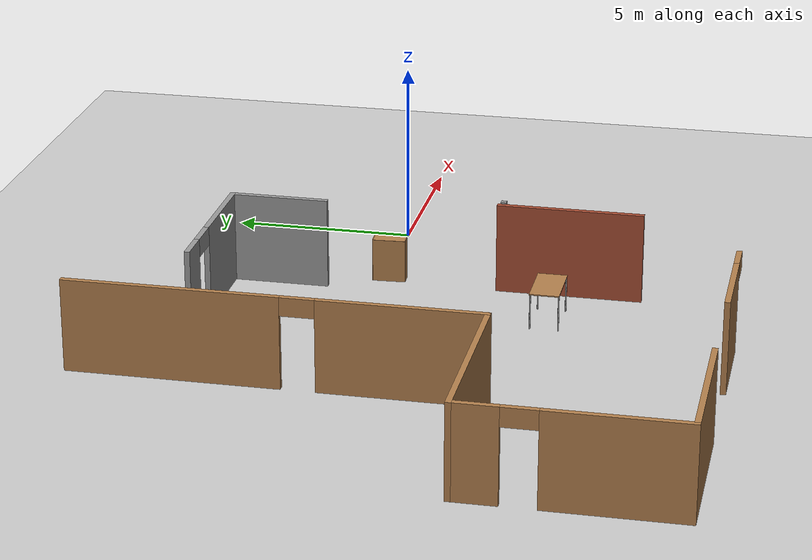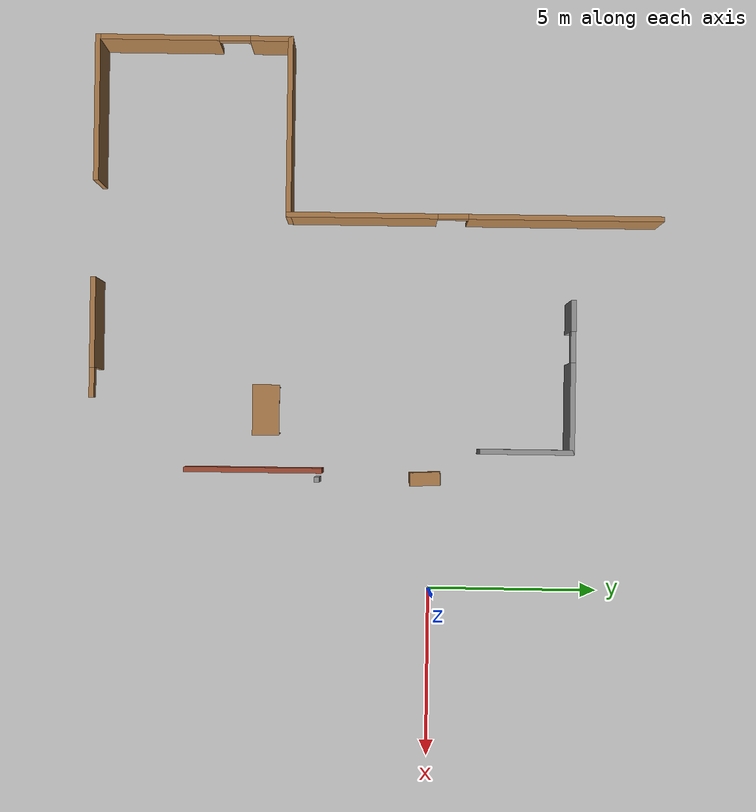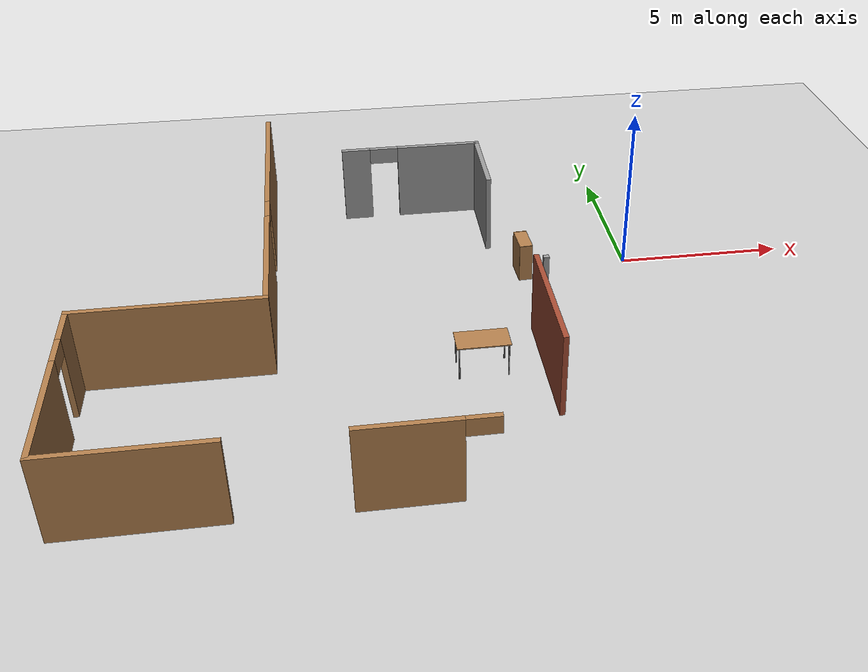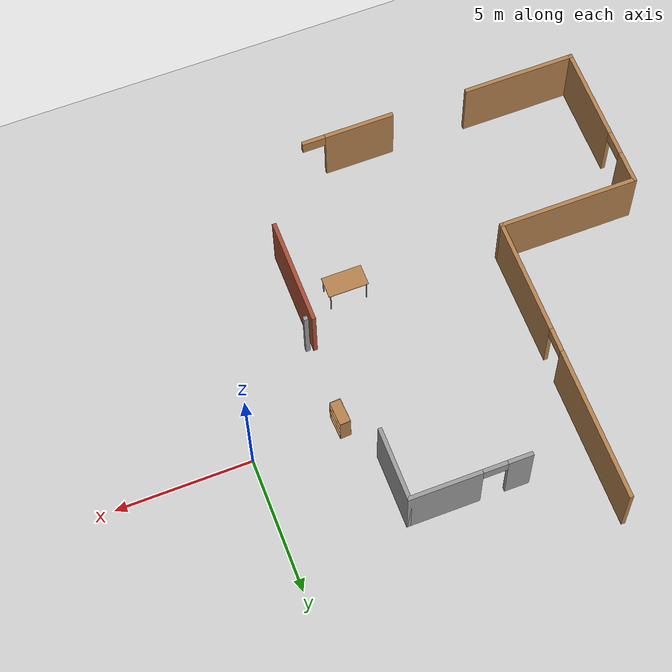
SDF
<sdf version="1.7">
 <world name="default">
  <model name="ground_plane">
   <static>1</static>
   <link name="link">
    <collision name="collision">
     <geometry><plane><normal>0 0 1</normal><size>100 100</size></plane></geometry>
     <surface>
      <contact><collide_bitmask>65535</collide_bitmask></contact>
      <friction><ode><mu>100</mu><mu2>50</mu2></ode></friction>
     </surface>
    </collision>
    <visual name="visual">
     <cast_shadows>0</cast_shadows>
     <geometry><plane><normal>0 0 1</normal><size>100 100</size></plane></geometry>
     <material>
      <script><uri>file://media/materials/scripts/gazebo.material</uri><name>Gazebo/Grey</name></script>
     </material>
    </visual>
   </link>
  </model>
  <model name="table_clone_0">
   <model name="table">
    <static>1</static>
    <link name="link">
     <collision name="surface">
      <pose>0 0 1 0 -0 0</pose>
      <geometry><box><size>1.5 0.8 0.03</size></box></geometry>
      <surface><friction><ode><mu>0.6</mu><mu2>0.6</mu2></ode></friction></surface>
     </collision>
     <visual name="visual1">
      <pose>0 0 1 0 -0 0</pose>
      <geometry><box><size>1.5 0.8 0.03</size></box></geometry>
      <material>
       <script><uri>file://media/materials/scripts/gazebo.material</uri><name>Gazebo/Wood</name></script>
      </material>
     </visual>
     <collision name="front_left_leg">
      <pose>0.68 0.38 0.5 0 -0 0</pose>
      <geometry><cylinder><radius>0.02</radius><length>1</length></cylinder></geometry>
     </collision>
     <visual name="front_left_leg">
      <pose>0.68 0.38 0.5 0 -0 0</pose>
      <geometry><cylinder><radius>0.02</radius><length>1</length></cylinder></geometry>
      <material>
       <script><uri>file://media/materials/scripts/gazebo.material</uri><name>Gazebo/Grey</name></script>
      </material>
     </visual>
     <collision name="front_right_leg">
      <pose>0.68 -0.38 0.5 0 -0 0</pose>
      <geometry><cylinder><radius>0.02</radius><length>1</length></cylinder></geometry>
     </collision>
     <visual name="front_right_leg">
      <pose>0.68 -0.38 0.5 0 -0 0</pose>
      <geometry><cylinder><radius>0.02</radius><length>1</length></cylinder></geometry>
      <material>
       <script><uri>file://media/materials/scripts/gazebo.material</uri><name>Gazebo/Grey</name></script>
      </material>
     </visual>
     <collision name="back_right_leg">
      <pose>-0.68 -0.38 0.5 0 -0 0</pose>
      <geometry><cylinder><radius>0.02</radius><length>1</length></cylinder></geometry>
     </collision>
     <visual name="back_right_leg">
      <pose>-0.68 -0.38 0.5 0 -0 0</pose>
      <geometry><cylinder><radius>0.02</radius><length>1</length></cylinder></geometry>
      <material>
       <script><uri>file://media/materials/scripts/gazebo.material</uri><name>Gazebo/Grey</name></script>
      </material>
     </visual>
     <collision name="back_left_leg">
      <pose>-0.68 0.38 0.5 0 -0 0</pose>
      <geometry><cylinder><radius>0.02</radius><length>1</length></cylinder></geometry>
     </collision>
     <visual name="back_left_leg">
      <pose>-0.68 0.38 0.5 0 -0 0</pose>
      <geometry><cylinder><radius>0.02</radius><length>1</length></cylinder></geometry>
      <material>
       <script><uri>file://media/materials/scripts/gazebo.material</uri><name>Gazebo/Grey</name></script>
      </material>
     </visual>
    </link>
   </model>
   <static>0</static>
   <pose>-5.26231 -4.89518 0 0 -0 0</pose>
  </model>
  <model name="bookshelf_clone">
   <model name="bookshelf">
    <static>1</static>
    <link name="link">
     <inertial><mass>1</mass></inertial>
     <collision name="back">
      <pose>0 0.005 0.6 0 -0 0</pose>
      <geometry><box><size>0.9 0.01 1.2</size></box></geometry>
     </collision>
     <visual name="visual1">
      <pose>0 0.005 0.6 0 -0 0</pose>
      <geometry><box><size>0.9 0.01 1.2</size></box></geometry>
      <material>
       <script><uri>file://media/materials/scripts/gazebo.material</uri><name>Gazebo/Wood</name></script>
      </material>
     </visual>
     <collision name="left_side">
      <pose>0.45 -0.195 0.6 0 -0 0</pose>
      <geometry><box><size>0.02 0.4 1.2</size></box></geometry>
     </collision>
     <visual name="visual2">
      <pose>0.45 -0.195 0.6 0 -0 0</pose>
      <geometry><box><size>0.02 0.4 1.2</size></box></geometry>
      <material>
       <script><uri>file://media/materials/scripts/gazebo.material</uri><name>Gazebo/Wood</name></script>
      </material>
     </visual>
     <collision name="right_side">
      <pose>-0.45 -0.195 0.6 0 -0 0</pose>
      <geometry><box><size>0.02 0.4 1.2</size></box></geometry>
     </collision>
     <visual name="visual3">
      <pose>-0.45 -0.195 0.6 0 -0 0</pose>
      <geometry><box><size>0.02 0.4 1.2</size></box></geometry>
      <material>
       <script><uri>file://media/materials/scripts/gazebo.material</uri><name>Gazebo/Wood</name></script>
      </material>
     </visual>
     <collision name="bottom">
      <pose>0 -0.195 0.03 0 -0 0</pose>
      <geometry><box><size>0.88 0.4 0.06</size></box></geometry>
     </collision>
     <visual name="visual4">
      <pose>0 -0.195 0.03 0 -0 0</pose>
      <geometry><box><size>0.88 0.4 0.06</size></box></geometry>
      <material>
       <script><uri>file://media/materials/scripts/gazebo.material</uri><name>Gazebo/Wood</name></script>
      </material>
     </visual>
     <collision name="top">
      <pose>0 -0.195 1.19 0 -0 0</pose>
      <geometry><box><size>0.88 0.4 0.02</size></box></geometry>
     </collision>
     <visual name="visual5">
      <pose>0 -0.195 1.19 0 -0 0</pose>
      <geometry><box><size>0.88 0.4 0.02</size></box></geometry>
      <material>
       <script><uri>file://media/materials/scripts/gazebo.material</uri><name>Gazebo/Wood</name></script>
      </material>
     </visual>
     <collision name="low_shelf">
      <pose>0 -0.195 0.43 0 -0 0</pose>
      <geometry><box><size>0.88 0.4 0.02</size></box></geometry>
     </collision>
     <visual name="visual6">
      <pose>0 -0.195 0.43 0 -0 0</pose>
      <geometry><box><size>0.88 0.4 0.02</size></box></geometry>
      <material>
       <script><uri>file://media/materials/scripts/gazebo.material</uri><name>Gazebo/Wood</name></script>
      </material>
     </visual>
     <collision name="high_shelf">
      <pose>0 -0.195 0.8 0 -0 0</pose>
      <geometry><box><size>0.88 0.4 0.02</size></box></geometry>
     </collision>
     <visual name="visual7">
      <pose>0 -0.195 0.8 0 -0 0</pose>
      <geometry><box><size>0.88 0.4 0.02</size></box></geometry>
      <material>
       <script><uri>file://media/materials/scripts/gazebo.material</uri><name>Gazebo/Wood</name></script>
      </material>
     </visual>
    </link>
    <pose>-4e-06 4e-06 0 0 -0 0</pose>
   </model>
   <static>0</static>
   <pose>-3.47779 -0.174747 0 0 -0 1.61922</pose>
  </model>
  <model name="floorplan">
   <link name="Wall_1">
    <pose>-2.93248 -1.67538 0 0 -0 0</pose>
    <visual name="Wall_1_Visual">
     <pose>0 0 1.25 0 -0 0</pose>
     <geometry><box><size>0.16 0.15 2.5</size></box></geometry>
     <material>
      <script><uri>file://media/materials/scripts/gazebo.material</uri><name>Gazebo/Grey</name></script>
      <ambient>0 0 0 1</ambient>
      <shader type="pixel"/>
     </material>
     <meta><layer>0</layer></meta>
    </visual>
    <collision name="Wall_1_Collision">
     <pose>0 0 1.25 0 -0 0</pose>
     <geometry><box><size>0.16 0.15 2.5</size></box></geometry>
     <surface>
      <friction>
       <ode><mu>1</mu><mu2>1</mu2><fdir1>0 0 0</fdir1><slip1>0</slip1><slip2>0</slip2></ode>
       <torsional>
        <coefficient>1</coefficient>
        <patch_radius>0</patch_radius>
        <surface_radius>0</surface_radius>
        <use_patch_radius>1</use_patch_radius>
        <ode><slip>0</slip></ode>
       </torsional>
      </friction>
      <bounce><restitution_coefficient>0</restitution_coefficient><threshold>1e+06</threshold></bounce>
      <contact>
       <collide_without_contact>0</collide_without_contact>
       <collide_without_contact_bitmask>1</collide_without_contact_bitmask>
       <collide_bitmask>1</collide_bitmask>
       <ode>
        <soft_cfm>0</soft_cfm>
        <soft_erp>0.2</soft_erp>
        <kp>1e+13</kp>
        <kd>1</kd>
        <max_vel>0.01</max_vel>
        <min_depth>0</min_depth>
       </ode>
       <bullet>
        <split_impulse>1</split_impulse>
        <split_impulse_penetration_threshold>-0.01</split_impulse_penetration_threshold>
        <soft_cfm>0</soft_cfm>
        <soft_erp>0.2</soft_erp>
        <kp>1e+13</kp>
        <kd>1</kd>
       </bullet>
      </contact>
     </surface>
    </collision>
   </link>
   <link name="Wall_22">
    <pose>-10.625 2.81893 0 0 0 -1.5708</pose>
    <visual name="Wall_22_Visual_0">
     <pose>-2.65849 0 1.25 0 -0 0</pose>
     <geometry><box><size>5.68303 0.15 2.5</size></box></geometry>
     <material>
      <script><uri>file://media/materials/scripts/gazebo.material</uri><name>Gazebo/Wood</name></script>
      <ambient>0.996078 0.47451 0.0196078 1</ambient>
      <shader type="pixel"/>
     </material>
     <meta><layer>0</layer></meta>
    </visual>
    <visual name="Wall_22_Visual_1">
     <pose>3.29151 0 1.25 0 -0 0</pose>
     <geometry><box><size>4.41697 0.15 2.5</size></box></geometry>
     <material>
      <script><uri>file://media/materials/scripts/gazebo.material</uri><name>Gazebo/Wood</name></script>
      <ambient>0.996078 0.47451 0.0196078 1</ambient>
      <shader type="pixel"/>
     </material>
     <meta><layer>0</layer></meta>
    </visual>
    <visual name="Wall_22_Visual_2">
     <pose>0.633029 0 2.25 0 -0 0</pose>
     <geometry><box><size>0.9 0.15 0.5</size></box></geometry>
     <material>
      <script><uri>file://media/materials/scripts/gazebo.material</uri><name>Gazebo/Wood</name></script>
      <ambient>0.996078 0.47451 0.0196078 1</ambient>
      <shader type="pixel"/>
     </material>
     <meta><layer>0</layer></meta>
    </visual>
    <collision name="Wall_22_Collision_0">
     <pose>-2.65849 0 1.25 0 -0 0</pose>
     <geometry><box><size>5.68303 0.15 2.5</size></box></geometry>
     <surface>
      <friction>
       <ode><mu>1</mu><mu2>1</mu2><fdir1>0 0 0</fdir1><slip1>0</slip1><slip2>0</slip2></ode>
       <torsional>
        <coefficient>1</coefficient>
        <patch_radius>0</patch_radius>
        <surface_radius>0</surface_radius>
        <use_patch_radius>1</use_patch_radius>
        <ode><slip>0</slip></ode>
       </torsional>
      </friction>
      <bounce><restitution_coefficient>0</restitution_coefficient><threshold>1e+06</threshold></bounce>
      <contact>
       <collide_without_contact>0</collide_without_contact>
       <collide_without_contact_bitmask>1</collide_without_contact_bitmask>
       <collide_bitmask>1</collide_bitmask>
       <ode>
        <soft_cfm>0</soft_cfm>
        <soft_erp>0.2</soft_erp>
        <kp>1e+13</kp>
        <kd>1</kd>
        <max_vel>0.01</max_vel>
        <min_depth>0</min_depth>
       </ode>
       <bullet>
        <split_impulse>1</split_impulse>
        <split_impulse_penetration_threshold>-0.01</split_impulse_penetration_threshold>
        <soft_cfm>0</soft_cfm>
        <soft_erp>0.2</soft_erp>
        <kp>1e+13</kp>
        <kd>1</kd>
       </bullet>
      </contact>
     </surface>
    </collision>
    <collision name="Wall_22_Collision_1">
     <pose>3.29151 0 1.25 0 -0 0</pose>
     <geometry><box><size>4.41697 0.15 2.5</size></box></geometry>
     <surface>
      <friction>
       <ode><mu>1</mu><mu2>1</mu2><fdir1>0 0 0</fdir1><slip1>0</slip1><slip2>0</slip2></ode>
       <torsional>
        <coefficient>1</coefficient>
        <patch_radius>0</patch_radius>
        <surface_radius>0</surface_radius>
        <use_patch_radius>1</use_patch_radius>
        <ode><slip>0</slip></ode>
       </torsional>
      </friction>
      <bounce><restitution_coefficient>0</restitution_coefficient><threshold>1e+06</threshold></bounce>
      <contact>
       <collide_without_contact>0</collide_without_contact>
       <collide_without_contact_bitmask>1</collide_without_contact_bitmask>
       <collide_bitmask>1</collide_bitmask>
       <ode>
        <soft_cfm>0</soft_cfm>
        <soft_erp>0.2</soft_erp>
        <kp>1e+13</kp>
        <kd>1</kd>
        <max_vel>0.01</max_vel>
        <min_depth>0</min_depth>
       </ode>
       <bullet>
        <split_impulse>1</split_impulse>
        <split_impulse_penetration_threshold>-0.01</split_impulse_penetration_threshold>
        <soft_cfm>0</soft_cfm>
        <soft_erp>0.2</soft_erp>
        <kp>1e+13</kp>
        <kd>1</kd>
       </bullet>
      </contact>
     </surface>
    </collision>
    <collision name="Wall_22_Collision_2">
     <pose>0.633029 0 2.25 0 -0 0</pose>
     <geometry><box><size>0.9 0.15 0.5</size></box></geometry>
     <surface>
      <friction>
       <ode><mu>1</mu><mu2>1</mu2><fdir1>0 0 0</fdir1><slip1>0</slip1><slip2>0</slip2></ode>
       <torsional>
        <coefficient>1</coefficient>
        <patch_radius>0</patch_radius>
        <surface_radius>0</surface_radius>
        <use_patch_radius>1</use_patch_radius>
        <ode><slip>0</slip></ode>
       </torsional>
      </friction>
      <bounce><restitution_coefficient>0</restitution_coefficient><threshold>1e+06</threshold></bounce>
      <contact>
       <collide_without_contact>0</collide_without_contact>
       <collide_without_contact_bitmask>1</collide_without_contact_bitmask>
       <collide_bitmask>1</collide_bitmask>
       <ode>
        <soft_cfm>0</soft_cfm>
        <soft_erp>0.2</soft_erp>
        <kp>1e+13</kp>
        <kd>1</kd>
        <max_vel>0.01</max_vel>
        <min_depth>0</min_depth>
       </ode>
       <bullet>
        <split_impulse>1</split_impulse>
        <split_impulse_penetration_threshold>-0.01</split_impulse_penetration_threshold>
        <soft_cfm>0</soft_cfm>
        <soft_erp>0.2</soft_erp>
        <kp>1e+13</kp>
        <kd>1</kd>
       </bullet>
      </contact>
     </surface>
    </collision>
   </link>
   <link name="Wall_23">
    <pose>-13.175 -2.60607 0 0 -0 3.14159</pose>
    <visual name="Wall_23_Visual">
     <pose>0 0 1.25 0 -0 0</pose>
     <geometry><box><size>5.25 0.15 2.5</size></box></geometry>
     <material>
      <script><uri>file://media/materials/scripts/gazebo.material</uri><name>Gazebo/Wood</name></script>
      <ambient>0.996078 0.47451 0.0196078 1</ambient>
      <shader type="pixel"/>
     </material>
     <meta><layer>0</layer></meta>
    </visual>
    <collision name="Wall_23_Collision">
     <pose>0 0 1.25 0 -0 0</pose>
     <geometry><box><size>5.25 0.15 2.5</size></box></geometry>
     <surface>
      <friction>
       <ode><mu>1</mu><mu2>1</mu2><fdir1>0 0 0</fdir1><slip1>0</slip1><slip2>0</slip2></ode>
       <torsional>
        <coefficient>1</coefficient>
        <patch_radius>0</patch_radius>
        <surface_radius>0</surface_radius>
        <use_patch_radius>1</use_patch_radius>
        <ode><slip>0</slip></ode>
       </torsional>
      </friction>
      <bounce><restitution_coefficient>0</restitution_coefficient><threshold>1e+06</threshold></bounce>
      <contact>
       <collide_without_contact>0</collide_without_contact>
       <collide_without_contact_bitmask>1</collide_without_contact_bitmask>
       <collide_bitmask>1</collide_bitmask>
       <ode>
        <soft_cfm>0</soft_cfm>
        <soft_erp>0.2</soft_erp>
        <kp>1e+13</kp>
        <kd>1</kd>
        <max_vel>0.01</max_vel>
        <min_depth>0</min_depth>
       </ode>
       <bullet>
        <split_impulse>1</split_impulse>
        <split_impulse_penetration_threshold>-0.01</split_impulse_penetration_threshold>
        <soft_cfm>0</soft_cfm>
        <soft_erp>0.2</soft_erp>
        <kp>1e+13</kp>
        <kd>1</kd>
       </bullet>
      </contact>
     </surface>
    </collision>
   </link>
   <link name="Wall_24">
    <pose>-15.725 -5.40607 0 0 0 -1.5708</pose>
    <visual name="Wall_24_Visual_1">
     <pose>1.07666 0 1.25 0 -0 0</pose>
     <geometry><box><size>3.59667 0.15 2.5</size></box></geometry>
     <material>
      <script><uri>file://media/materials/scripts/gazebo.material</uri><name>Gazebo/Wood</name></script>
      <ambient>0.996078 0.47451 0.0196078 1</ambient>
      <shader type="pixel"/>
     </material>
     <meta><layer>0</layer></meta>
    </visual>
    <visual name="Wall_24_Visual_0">
     <pose>-2.24833 0 1.25 0 -0 0</pose>
     <geometry><box><size>1.25333 0.15 2.5</size></box></geometry>
     <material>
      <script><uri>file://media/materials/scripts/gazebo.material</uri><name>Gazebo/Wood</name></script>
      <ambient>0.996078 0.47451 0.0196078 1</ambient>
      <shader type="pixel"/>
     </material>
     <meta><layer>0</layer></meta>
    </visual>
    <visual name="Wall_24_Visual_2">
     <pose>-1.17167 0 2.25 0 -0 0</pose>
     <geometry><box><size>0.9 0.15 0.5</size></box></geometry>
     <material>
      <script><uri>file://media/materials/scripts/gazebo.material</uri><name>Gazebo/Wood</name></script>
      <ambient>0.996078 0.47451 0.0196078 1</ambient>
      <shader type="pixel"/>
     </material>
     <meta><layer>0</layer></meta>
    </visual>
    <collision name="Wall_24_Collision_0">
     <pose>-2.24833 0 1.25 0 -0 0</pose>
     <geometry><box><size>1.25333 0.15 2.5</size></box></geometry>
     <surface>
      <friction>
       <ode><mu>1</mu><mu2>1</mu2><fdir1>0 0 0</fdir1><slip1>0</slip1><slip2>0</slip2></ode>
       <torsional>
        <coefficient>1</coefficient>
        <patch_radius>0</patch_radius>
        <surface_radius>0</surface_radius>
        <use_patch_radius>1</use_patch_radius>
        <ode><slip>0</slip></ode>
       </torsional>
      </friction>
      <bounce><restitution_coefficient>0</restitution_coefficient><threshold>1e+06</threshold></bounce>
      <contact>
       <collide_without_contact>0</collide_without_contact>
       <collide_without_contact_bitmask>1</collide_without_contact_bitmask>
       <collide_bitmask>1</collide_bitmask>
       <ode>
        <soft_cfm>0</soft_cfm>
        <soft_erp>0.2</soft_erp>
        <kp>1e+13</kp>
        <kd>1</kd>
        <max_vel>0.01</max_vel>
        <min_depth>0</min_depth>
       </ode>
       <bullet>
        <split_impulse>1</split_impulse>
        <split_impulse_penetration_threshold>-0.01</split_impulse_penetration_threshold>
        <soft_cfm>0</soft_cfm>
        <soft_erp>0.2</soft_erp>
        <kp>1e+13</kp>
        <kd>1</kd>
       </bullet>
      </contact>
     </surface>
    </collision>
    <collision name="Wall_24_Collision_1">
     <pose>1.07666 0 1.25 0 -0 0</pose>
     <geometry><box><size>3.59667 0.15 2.5</size></box></geometry>
     <surface>
      <friction>
       <ode><mu>1</mu><mu2>1</mu2><fdir1>0 0 0</fdir1><slip1>0</slip1><slip2>0</slip2></ode>
       <torsional>
        <coefficient>1</coefficient>
        <patch_radius>0</patch_radius>
        <surface_radius>0</surface_radius>
        <use_patch_radius>1</use_patch_radius>
        <ode><slip>0</slip></ode>
       </torsional>
      </friction>
      <bounce><restitution_coefficient>0</restitution_coefficient><threshold>1e+06</threshold></bounce>
      <contact>
       <collide_without_contact>0</collide_without_contact>
       <collide_without_contact_bitmask>1</collide_without_contact_bitmask>
       <collide_bitmask>1</collide_bitmask>
       <ode>
        <soft_cfm>0</soft_cfm>
        <soft_erp>0.2</soft_erp>
        <kp>1e+13</kp>
        <kd>1</kd>
        <max_vel>0.01</max_vel>
        <min_depth>0</min_depth>
       </ode>
       <bullet>
        <split_impulse>1</split_impulse>
        <split_impulse_penetration_threshold>-0.01</split_impulse_penetration_threshold>
        <soft_cfm>0</soft_cfm>
        <soft_erp>0.2</soft_erp>
        <kp>1e+13</kp>
        <kd>1</kd>
       </bullet>
      </contact>
     </surface>
    </collision>
    <collision name="Wall_24_Collision_2">
     <pose>-1.17167 0 2.25 0 -0 0</pose>
     <geometry><box><size>0.9 0.15 0.5</size></box></geometry>
     <surface>
      <friction>
       <ode><mu>1</mu><mu2>1</mu2><fdir1>0 0 0</fdir1><slip1>0</slip1><slip2>0</slip2></ode>
       <torsional>
        <coefficient>1</coefficient>
        <patch_radius>0</patch_radius>
        <surface_radius>0</surface_radius>
        <use_patch_radius>1</use_patch_radius>
        <ode><slip>0</slip></ode>
       </torsional>
      </friction>
      <bounce><restitution_coefficient>0</restitution_coefficient><threshold>1e+06</threshold></bounce>
      <contact>
       <collide_without_contact>0</collide_without_contact>
       <collide_without_contact_bitmask>1</collide_without_contact_bitmask>
       <collide_bitmask>1</collide_bitmask>
       <ode>
        <soft_cfm>0</soft_cfm>
        <soft_erp>0.2</soft_erp>
        <kp>1e+13</kp>
        <kd>1</kd>
        <max_vel>0.01</max_vel>
        <min_depth>0</min_depth>
       </ode>
       <bullet>
        <split_impulse>1</split_impulse>
        <split_impulse_penetration_threshold>-0.01</split_impulse_penetration_threshold>
        <soft_cfm>0</soft_cfm>
        <soft_erp>0.2</soft_erp>
        <kp>1e+13</kp>
        <kd>1</kd>
       </bullet>
      </contact>
     </surface>
    </collision>
   </link>
   <link name="Wall_26">
    <pose>-13.675 -8.20607 0 0 -0 0</pose>
    <visual name="Wall_26_Visual">
     <pose>0 0 1.25 0 -0 0</pose>
     <geometry><box><size>4.25 0.15 2.5</size></box></geometry>
     <material>
      <script><uri>file://media/materials/scripts/gazebo.material</uri><name>Gazebo/Wood</name></script>
      <ambient>0.996078 0.47451 0.0196078 1</ambient>
      <shader type="pixel"/>
     </material>
     <meta><layer>0</layer></meta>
    </visual>
    <collision name="Wall_26_Collision">
     <pose>0 0 1.25 0 -0 0</pose>
     <geometry><box><size>4.25 0.15 2.5</size></box></geometry>
     <surface>
      <friction>
       <ode><mu>1</mu><mu2>1</mu2><fdir1>0 0 0</fdir1><slip1>0</slip1><slip2>0</slip2></ode>
       <torsional>
        <coefficient>1</coefficient>
        <patch_radius>0</patch_radius>
        <surface_radius>0</surface_radius>
        <use_patch_radius>1</use_patch_radius>
        <ode><slip>0</slip></ode>
       </torsional>
      </friction>
      <bounce><restitution_coefficient>0</restitution_coefficient><threshold>1e+06</threshold></bounce>
      <contact>
       <collide_without_contact>0</collide_without_contact>
       <collide_without_contact_bitmask>1</collide_without_contact_bitmask>
       <collide_bitmask>1</collide_bitmask>
       <ode>
        <soft_cfm>0</soft_cfm>
        <soft_erp>0.2</soft_erp>
        <kp>1e+13</kp>
        <kd>1</kd>
        <max_vel>0.01</max_vel>
        <min_depth>0</min_depth>
       </ode>
       <bullet>
        <split_impulse>1</split_impulse>
        <split_impulse_penetration_threshold>-0.01</split_impulse_penetration_threshold>
        <soft_cfm>0</soft_cfm>
        <soft_erp>0.2</soft_erp>
        <kp>1e+13</kp>
        <kd>1</kd>
       </bullet>
      </contact>
     </surface>
    </collision>
   </link>
   <link name="Wall_32">
    <pose>-5.98815 5.71707 0 0 -0 0</pose>
    <visual name="Wall_32_Visual_0">
     <pose>-1.79547 0 1.25 0 -0 0</pose>
     <geometry><box><size>0.90906 0.15 2.5</size></box></geometry>
     <material>
      <script><uri>file://media/materials/scripts/gazebo.material</uri><name>Gazebo/Grey</name></script>
      <ambient>1 1 1 1</ambient>
      <shader type="pixel"/>
     </material>
     <meta><layer>0</layer></meta>
    </visual>
    <visual name="Wall_32_Visual_1">
     <pose>0.90453 0 1.25 0 -0 0</pose>
     <geometry><box><size>2.69094 0.15 2.5</size></box></geometry>
     <material>
      <script><uri>file://media/materials/scripts/gazebo.material</uri><name>Gazebo/Grey</name></script>
      <ambient>1 1 1 1</ambient>
      <shader type="pixel"/>
     </material>
     <meta><layer>0</layer></meta>
    </visual>
    <visual name="Wall_32_Visual_2">
     <pose>-0.89094 0 2.25 0 -0 0</pose>
     <geometry><box><size>0.9 0.15 0.5</size></box></geometry>
     <material>
      <script><uri>file://media/materials/scripts/gazebo.material</uri><name>Gazebo/Grey</name></script>
      <ambient>1 1 1 1</ambient>
      <shader type="pixel"/>
     </material>
     <meta><layer>0</layer></meta>
    </visual>
    <collision name="Wall_32_Collision_0">
     <pose>-1.79547 0 1.25 0 -0 0</pose>
     <geometry><box><size>0.90906 0.15 2.5</size></box></geometry>
     <surface>
      <friction>
       <ode><mu>1</mu><mu2>1</mu2><fdir1>0 0 0</fdir1><slip1>0</slip1><slip2>0</slip2></ode>
       <torsional>
        <coefficient>1</coefficient>
        <patch_radius>0</patch_radius>
        <surface_radius>0</surface_radius>
        <use_patch_radius>1</use_patch_radius>
        <ode><slip>0</slip></ode>
       </torsional>
      </friction>
      <bounce><restitution_coefficient>0</restitution_coefficient><threshold>1e+06</threshold></bounce>
      <contact>
       <collide_without_contact>0</collide_without_contact>
       <collide_without_contact_bitmask>1</collide_without_contact_bitmask>
       <collide_bitmask>1</collide_bitmask>
       <ode>
        <soft_cfm>0</soft_cfm>
        <soft_erp>0.2</soft_erp>
        <kp>1e+13</kp>
        <kd>1</kd>
        <max_vel>0.01</max_vel>
        <min_depth>0</min_depth>
       </ode>
       <bullet>
        <split_impulse>1</split_impulse>
        <split_impulse_penetration_threshold>-0.01</split_impulse_penetration_threshold>
        <soft_cfm>0</soft_cfm>
        <soft_erp>0.2</soft_erp>
        <kp>1e+13</kp>
        <kd>1</kd>
       </bullet>
      </contact>
     </surface>
    </collision>
    <collision name="Wall_32_Collision_1">
     <pose>0.90453 0 1.25 0 -0 0</pose>
     <geometry><box><size>2.69094 0.15 2.5</size></box></geometry>
     <surface>
      <friction>
       <ode><mu>1</mu><mu2>1</mu2><fdir1>0 0 0</fdir1><slip1>0</slip1><slip2>0</slip2></ode>
       <torsional>
        <coefficient>1</coefficient>
        <patch_radius>0</patch_radius>
        <surface_radius>0</surface_radius>
        <use_patch_radius>1</use_patch_radius>
        <ode><slip>0</slip></ode>
       </torsional>
      </friction>
      <bounce><restitution_coefficient>0</restitution_coefficient><threshold>1e+06</threshold></bounce>
      <contact>
       <collide_without_contact>0</collide_without_contact>
       <collide_without_contact_bitmask>1</collide_without_contact_bitmask>
       <collide_bitmask>1</collide_bitmask>
       <ode>
        <soft_cfm>0</soft_cfm>
        <soft_erp>0.2</soft_erp>
        <kp>1e+13</kp>
        <kd>1</kd>
        <max_vel>0.01</max_vel>
        <min_depth>0</min_depth>
       </ode>
       <bullet>
        <split_impulse>1</split_impulse>
        <split_impulse_penetration_threshold>-0.01</split_impulse_penetration_threshold>
        <soft_cfm>0</soft_cfm>
        <soft_erp>0.2</soft_erp>
        <kp>1e+13</kp>
        <kd>1</kd>
       </bullet>
      </contact>
     </surface>
    </collision>
    <collision name="Wall_32_Collision_2">
     <pose>-0.89094 0 2.25 0 -0 0</pose>
     <geometry><box><size>0.9 0.15 0.5</size></box></geometry>
     <surface>
      <friction>
       <ode><mu>1</mu><mu2>1</mu2><fdir1>0 0 0</fdir1><slip1>0</slip1><slip2>0</slip2></ode>
       <torsional>
        <coefficient>1</coefficient>
        <patch_radius>0</patch_radius>
        <surface_radius>0</surface_radius>
        <use_patch_radius>1</use_patch_radius>
        <ode><slip>0</slip></ode>
       </torsional>
      </friction>
      <bounce><restitution_coefficient>0</restitution_coefficient><threshold>1e+06</threshold></bounce>
      <contact>
       <collide_without_contact>0</collide_without_contact>
       <collide_without_contact_bitmask>1</collide_without_contact_bitmask>
       <collide_bitmask>1</collide_bitmask>
       <ode>
        <soft_cfm>0</soft_cfm>
        <soft_erp>0.2</soft_erp>
        <kp>1e+13</kp>
        <kd>1</kd>
        <max_vel>0.01</max_vel>
        <min_depth>0</min_depth>
       </ode>
       <bullet>
        <split_impulse>1</split_impulse>
        <split_impulse_penetration_threshold>-0.01</split_impulse_penetration_threshold>
        <soft_cfm>0</soft_cfm>
        <soft_erp>0.2</soft_erp>
        <kp>1e+13</kp>
        <kd>1</kd>
       </bullet>
      </contact>
     </surface>
    </collision>
   </link>
   <link name="Wall_33">
    <pose>-3.81315 4.41707 0 0 0 -1.5708</pose>
    <visual name="Wall_33_Visual">
     <pose>0 0 1.25 0 -0 0</pose>
     <geometry><box><size>2.75 0.15 2.5</size></box></geometry>
     <material>
      <script><uri>file://media/materials/scripts/gazebo.material</uri><name>Gazebo/Grey</name></script>
      <ambient>1 1 1 1</ambient>
      <shader type="pixel"/>
     </material>
     <meta><layer>0</layer></meta>
    </visual>
    <collision name="Wall_33_Collision">
     <pose>0 0 1.25 0 -0 0</pose>
     <geometry><box><size>2.75 0.15 2.5</size></box></geometry>
     <surface>
      <friction>
       <ode><mu>1</mu><mu2>1</mu2><fdir1>0 0 0</fdir1><slip1>0</slip1><slip2>0</slip2></ode>
       <torsional>
        <coefficient>1</coefficient>
        <patch_radius>0</patch_radius>
        <surface_radius>0</surface_radius>
        <use_patch_radius>1</use_patch_radius>
        <ode><slip>0</slip></ode>
       </torsional>
      </friction>
      <bounce><restitution_coefficient>0</restitution_coefficient><threshold>1e+06</threshold></bounce>
      <contact>
       <collide_without_contact>0</collide_without_contact>
       <collide_without_contact_bitmask>1</collide_without_contact_bitmask>
       <collide_bitmask>1</collide_bitmask>
       <ode>
        <soft_cfm>0</soft_cfm>
        <soft_erp>0.2</soft_erp>
        <kp>1e+13</kp>
        <kd>1</kd>
        <max_vel>0.01</max_vel>
        <min_depth>0</min_depth>
       </ode>
       <bullet>
        <split_impulse>1</split_impulse>
        <split_impulse_penetration_threshold>-0.01</split_impulse_penetration_threshold>
        <soft_cfm>0</soft_cfm>
        <soft_erp>0.2</soft_erp>
        <kp>1e+13</kp>
        <kd>1</kd>
       </bullet>
      </contact>
     </surface>
    </collision>
   </link>
   <link name="Wall_38">
    <pose>-3.18742 -3.53777 0 0 0 -1.5708</pose>
    <visual name="Wall_38_Visual">
     <pose>0 0 1.25 0 -0 0</pose>
     <geometry><box><size>4 0.15 2.5</size></box></geometry>
     <material>
      <script><uri>file://media/materials/scripts/gazebo.material</uri><name>Gazebo/Bricks</name></script>
      <ambient>1 1 1 1</ambient>
      <shader type="pixel"/>
     </material>
     <meta><layer>0</layer></meta>
    </visual>
    <collision name="Wall_38_Collision">
     <pose>0 0 1.25 0 -0 0</pose>
     <geometry><box><size>4 0.15 2.5</size></box></geometry>
     <surface>
      <friction>
       <ode><mu>1</mu><mu2>1</mu2><fdir1>0 0 0</fdir1><slip1>0</slip1><slip2>0</slip2></ode>
       <torsional>
        <coefficient>1</coefficient>
        <patch_radius>0</patch_radius>
        <surface_radius>0</surface_radius>
        <use_patch_radius>1</use_patch_radius>
        <ode><slip>0</slip></ode>
       </torsional>
      </friction>
      <bounce><restitution_coefficient>0</restitution_coefficient><threshold>1e+06</threshold></bounce>
      <contact>
       <collide_without_contact>0</collide_without_contact>
       <collide_without_contact_bitmask>1</collide_without_contact_bitmask>
       <collide_bitmask>1</collide_bitmask>
       <ode>
        <soft_cfm>0</soft_cfm>
        <soft_erp>0.2</soft_erp>
        <kp>1e+13</kp>
        <kd>1</kd>
        <max_vel>0.01</max_vel>
        <min_depth>0</min_depth>
       </ode>
       <bullet>
        <split_impulse>1</split_impulse>
        <split_impulse_penetration_threshold>-0.01</split_impulse_penetration_threshold>
        <soft_cfm>0</soft_cfm>
        <soft_erp>0.2</soft_erp>
        <kp>1e+13</kp>
        <kd>1</kd>
       </bullet>
      </contact>
     </surface>
    </collision>
   </link>
   <link name="Wall_6">
    <pose>-6.98517 -8.24393 0 0 -0 0</pose>
    <visual name="Wall_6_Visual_0">
     <pose>-0.43671 0 1.25 0 -0 0</pose>
     <geometry><box><size>2.62658 0.15 2.5</size></box></geometry>
     <material>
      <script><uri>file://media/materials/scripts/gazebo.material</uri><name>Gazebo/Wood</name></script>
      <ambient>0.996078 0.47451 0.0196078 1</ambient>
      <shader type="pixel"/>
     </material>
     <meta><layer>0</layer></meta>
    </visual>
    <visual name="Wall_6_Visual_1">
     <pose>1.31329 0 2.25 0 -0 0</pose>
     <geometry><box><size>0.873419 0.15 0.5</size></box></geometry>
     <material>
      <script><uri>file://media/materials/scripts/gazebo.material</uri><name>Gazebo/Wood</name></script>
      <ambient>0.996078 0.47451 0.0196078 1</ambient>
      <shader type="pixel"/>
     </material>
     <meta><layer>0</layer></meta>
    </visual>
    <collision name="Wall_6_Collision_0">
     <pose>-0.43671 0 1.25 0 -0 0</pose>
     <geometry><box><size>2.62658 0.15 2.5</size></box></geometry>
     <surface>
      <friction>
       <ode><mu>1</mu><mu2>1</mu2><fdir1>0 0 0</fdir1><slip1>0</slip1><slip2>0</slip2></ode>
       <torsional>
        <coefficient>1</coefficient>
        <patch_radius>0</patch_radius>
        <surface_radius>0</surface_radius>
        <use_patch_radius>1</use_patch_radius>
        <ode><slip>0</slip></ode>
       </torsional>
      </friction>
      <bounce><restitution_coefficient>0</restitution_coefficient><threshold>1e+06</threshold></bounce>
      <contact>
       <collide_without_contact>0</collide_without_contact>
       <collide_without_contact_bitmask>1</collide_without_contact_bitmask>
       <collide_bitmask>1</collide_bitmask>
       <ode>
        <soft_cfm>0</soft_cfm>
        <soft_erp>0.2</soft_erp>
        <kp>1e+13</kp>
        <kd>1</kd>
        <max_vel>0.01</max_vel>
        <min_depth>0</min_depth>
       </ode>
       <bullet>
        <split_impulse>1</split_impulse>
        <split_impulse_penetration_threshold>-0.01</split_impulse_penetration_threshold>
        <soft_cfm>0</soft_cfm>
        <soft_erp>0.2</soft_erp>
        <kp>1e+13</kp>
        <kd>1</kd>
       </bullet>
      </contact>
     </surface>
    </collision>
    <collision name="Wall_6_Collision_1">
     <pose>1.31329 0 2.25 0 -0 0</pose>
     <geometry><box><size>0.873419 0.15 0.5</size></box></geometry>
     <surface>
      <friction>
       <ode><mu>1</mu><mu2>1</mu2><fdir1>0 0 0</fdir1><slip1>0</slip1><slip2>0</slip2></ode>
       <torsional>
        <coefficient>1</coefficient>
        <patch_radius>0</patch_radius>
        <surface_radius>0</surface_radius>
        <use_patch_radius>1</use_patch_radius>
        <ode><slip>0</slip></ode>
       </torsional>
      </friction>
      <bounce><restitution_coefficient>0</restitution_coefficient><threshold>1e+06</threshold></bounce>
      <contact>
       <collide_without_contact>0</collide_without_contact>
       <collide_without_contact_bitmask>1</collide_without_contact_bitmask>
       <collide_bitmask>1</collide_bitmask>
       <ode>
        <soft_cfm>0</soft_cfm>
        <soft_erp>0.2</soft_erp>
        <kp>1e+13</kp>
        <kd>1</kd>
        <max_vel>0.01</max_vel>
        <min_depth>0</min_depth>
       </ode>
       <bullet>
        <split_impulse>1</split_impulse>
        <split_impulse_penetration_threshold>-0.01</split_impulse_penetration_threshold>
        <soft_cfm>0</soft_cfm>
        <soft_erp>0.2</soft_erp>
        <kp>1e+13</kp>
        <kd>1</kd>
       </bullet>
      </contact>
     </surface>
    </collision>
   </link>
   <static>1</static>
   <pose>-0.30602 -1.65373 0 0 -0 0</pose>
  </model>
 </world>
</sdf>
